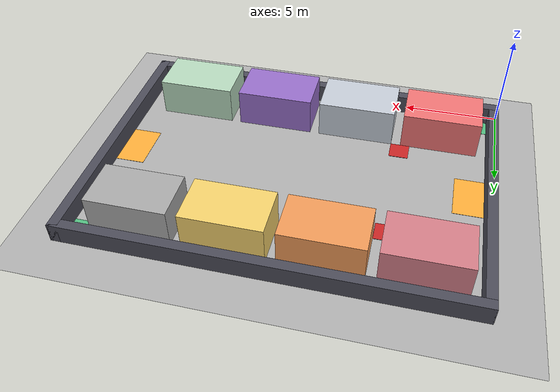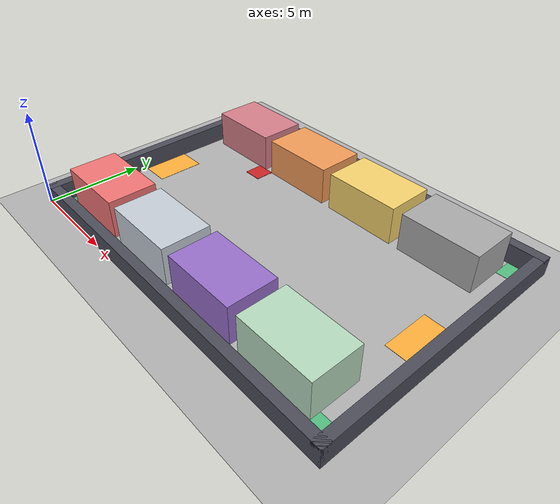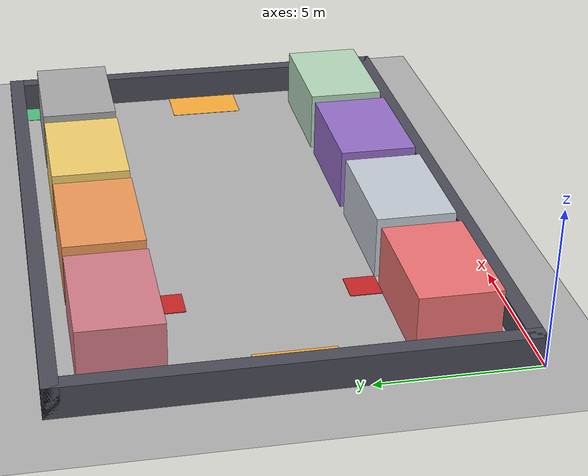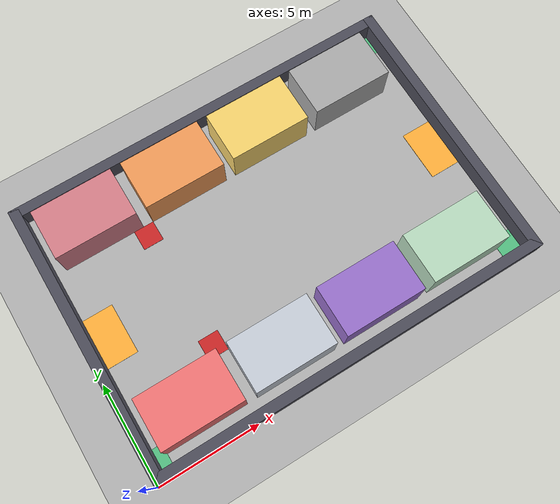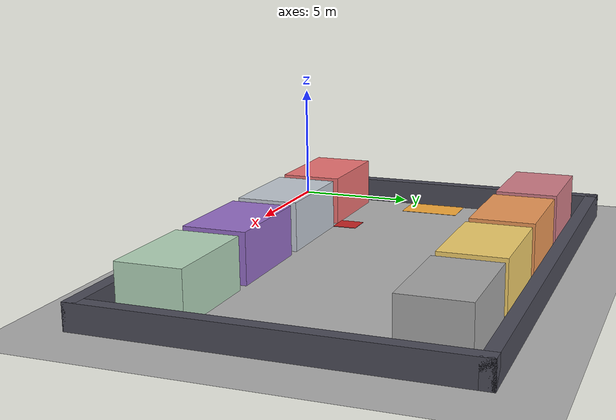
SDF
<?xml version="1.0" ?>
<sdf version="1.6">
  <world name="chemical_warehouse">

    <include>
      <uri>model://sun</uri>
    </include>

    <!-- 地面 -->
    <model name="ground_plane">
      <static>true</static>
      <link name="link">
        <collision name="collision">
          <geometry><plane><normal>0 0 1</normal><size>30 24</size></plane></geometry>
        </collision>
        <visual name="visual">
          <geometry><plane><normal>0 0 1</normal><size>30 24</size></plane></geometry>
          <material><ambient>0.7 0.7 0.7 1</ambient><diffuse>0.7 0.7 0.7 1</diffuse></material>
        </visual>
      </link>
    </model>

    <!-- 外墙（四边） -->
    <model name="wall_bottom"><static>true</static>
      <link name="link">
        <pose>10 0.25 0.5 0 0 0</pose>
        <collision name="c"><geometry><box><size>20 0.5 1</size></box></geometry></collision>
        <visual name="v"><geometry><box><size>20 0.5 1</size></box></geometry>
          <material><ambient>0.3 0.3 0.35 1</ambient></material></visual>
      </link></model>
    <model name="wall_top"><static>true</static>
      <link name="link">
        <pose>10 13.75 0.5 0 0 0</pose>
        <collision name="c"><geometry><box><size>20 0.5 1</size></box></geometry></collision>
        <visual name="v"><geometry><box><size>20 0.5 1</size></box></geometry>
          <material><ambient>0.3 0.3 0.35 1</ambient></material></visual>
      </link></model>
    <model name="wall_left"><static>true</static>
      <link name="link">
        <pose>0.25 7 0.5 0 0 0</pose>
        <collision name="c"><geometry><box><size>0.5 14 1</size></box></geometry></collision>
        <visual name="v"><geometry><box><size>0.5 14 1</size></box></geometry>
          <material><ambient>0.3 0.3 0.35 1</ambient></material></visual>
      </link></model>
    <model name="wall_right"><static>true</static>
      <link name="link">
        <pose>19.75 7 0.5 0 0 0</pose>
        <collision name="c"><geometry><box><size>0.5 14 1</size></box></geometry></collision>
        <visual name="v"><geometry><box><size>0.5 14 1</size></box></geometry>
          <material><ambient>0.3 0.3 0.35 1</ambient></material></visual>
      </link></model>

    <!-- 8 个储区货架（顶行） -->
    <model name="rack_alkali"><static>true</static>
      <link name="link"><pose>3 11.75 1.0 0 0 0</pose>
        <collision name="c"><geometry><box><size>4 2.5 2</size></box></geometry></collision>
        <visual name="v"><geometry><box><size>4 2.5 2</size></box></geometry>
          <material><ambient>0.84 0.5 0.54 1</ambient><diffuse>0.84 0.5 0.54 1</diffuse></material></visual>
      </link></model>
    <model name="rack_acid"><static>true</static>
      <link name="link"><pose>7.5 11.75 1.0 0 0 0</pose>
        <collision name="c"><geometry><box><size>4 2.5 2</size></box></geometry></collision>
        <visual name="v"><geometry><box><size>4 2.5 2</size></box></geometry>
          <material><ambient>0.95 0.61 0.35 1</ambient></material></visual>
      </link></model>
    <model name="rack_organic"><static>true</static>
      <link name="link"><pose>12 11.75 1.0 0 0 0</pose>
        <collision name="c"><geometry><box><size>4 2.5 2</size></box></geometry></collision>
        <visual name="v"><geometry><box><size>4 2.5 2</size></box></geometry>
          <material><ambient>0.97 0.83 0.43 1</ambient></material></visual>
      </link></model>
    <model name="rack_catalyst"><static>true</static>
      <link name="link"><pose>16.5 11.75 1.0 0 0 0</pose>
        <collision name="c"><geometry><box><size>4 2.5 2</size></box></geometry></collision>
        <visual name="v"><geometry><box><size>4 2.5 2</size></box></geometry>
          <material><ambient>0.67 0.67 0.67 1</ambient></material></visual>
      </link></model>

    <!-- 8 个储区货架（底行） -->
    <model name="rack_oxidizer"><static>true</static>
      <link name="link"><pose>3 2.25 1.0 0 0 0</pose>
        <collision name="c"><geometry><box><size>4 2.5 2</size></box></geometry></collision>
        <visual name="v"><geometry><box><size>4 2.5 2</size></box></geometry>
          <material><ambient>0.95 0.46 0.46 1</ambient></material></visual>
      </link></model>
    <model name="rack_general"><static>true</static>
      <link name="link"><pose>7.5 2.25 1.0 0 0 0</pose>
        <collision name="c"><geometry><box><size>4 2.5 2</size></box></geometry></collision>
        <visual name="v"><geometry><box><size>4 2.5 2</size></box></geometry>
          <material><ambient>0.78 0.81 0.85 1</ambient></material></visual>
      </link></model>
    <model name="rack_toxic"><static>true</static>
      <link name="link"><pose>12 2.25 1.0 0 0 0</pose>
        <collision name="c"><geometry><box><size>4 2.5 2</size></box></geometry></collision>
        <visual name="v"><geometry><box><size>4 2.5 2</size></box></geometry>
          <material><ambient>0.6 0.44 0.8 1</ambient></material></visual>
      </link></model>
    <model name="rack_consumable"><static>true</static>
      <link name="link"><pose>16.5 2.25 1.0 0 0 0</pose>
        <collision name="c"><geometry><box><size>4 2.5 2</size></box></geometry></collision>
        <visual name="v"><geometry><box><size>4 2.5 2</size></box></geometry>
          <material><ambient>0.72 0.86 0.75 1</ambient></material></visual>
      </link></model>

    <!-- 禁行区 Z1（酸×碱）、Z2（氧化剂×有机物）：地面红色标记 -->
    <model name="no_go_Z1"><static>true</static>
      <link name="link"><pose>5 10 0.01 0 0 0</pose>
        <collision name="c"><geometry><box><size>1 1 0.02</size></box></geometry></collision>
        <visual name="v"><geometry><box><size>1 1 0.02</size></box></geometry>
          <material><ambient>0.8 0.15 0.15 1</ambient><diffuse>0.8 0.15 0.15 1</diffuse></material></visual>
      </link></model>
    <model name="no_go_Z2"><static>true</static>
      <link name="link"><pose>5 4 0.01 0 0 0</pose>
        <collision name="c"><geometry><box><size>1 1 0.02</size></box></geometry></collision>
        <visual name="v"><geometry><box><size>1 1 0.02</size></box></geometry>
          <material><ambient>0.8 0.15 0.15 1</ambient><diffuse>0.8 0.15 0.15 1</diffuse></material></visual>
      </link></model>

    <!-- 装卸点 P1/P2、工位、充电桩（地面标记，非障碍） -->
    <model name="mark_P1"><static>true</static>
      <link name="link"><pose>1.25 6.75 0.005 0 0 0</pose>
        <visual name="v"><geometry><box><size>1.5 2.5 0.01</size></box></geometry>
          <material><ambient>1 0.69 0.23 1</ambient></material></visual>
      </link></model>
    <model name="mark_P2"><static>true</static>
      <link name="link"><pose>18.75 6.75 0.005 0 0 0</pose>
        <visual name="v"><geometry><box><size>1.5 2.5 0.01</size></box></geometry>
          <material><ambient>1 0.69 0.23 1</ambient></material></visual>
      </link></model>

    <model name="mark_CP1"><static>true</static>
      <link name="link"><pose>19 1 0.005 0 0 0</pose>
        <visual name="v"><geometry><box><size>1 1 0.01</size></box></geometry>
          <material><ambient>0.33 0.75 0.51 1</ambient></material></visual>
      </link></model>
    <model name="mark_CP2"><static>true</static>
      <link name="link"><pose>19 13 0.005 0 0 0</pose>
        <visual name="v"><geometry><box><size>1 1 0.01</size></box></geometry>
          <material><ambient>0.33 0.75 0.51 1</ambient></material></visual>
      </link></model>
    <model name="mark_CP3"><static>true</static>
      <link name="link"><pose>0.75 1 0.005 0 0 0</pose>
        <visual name="v"><geometry><box><size>0.5 1 0.01</size></box></geometry>
          <material><ambient>0.33 0.75 0.51 1</ambient></material></visual>
      </link></model>

  </world>
</sdf>
